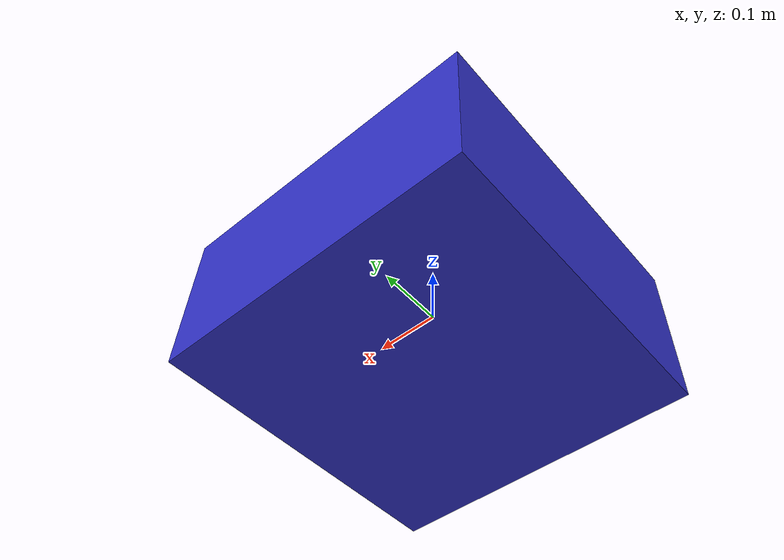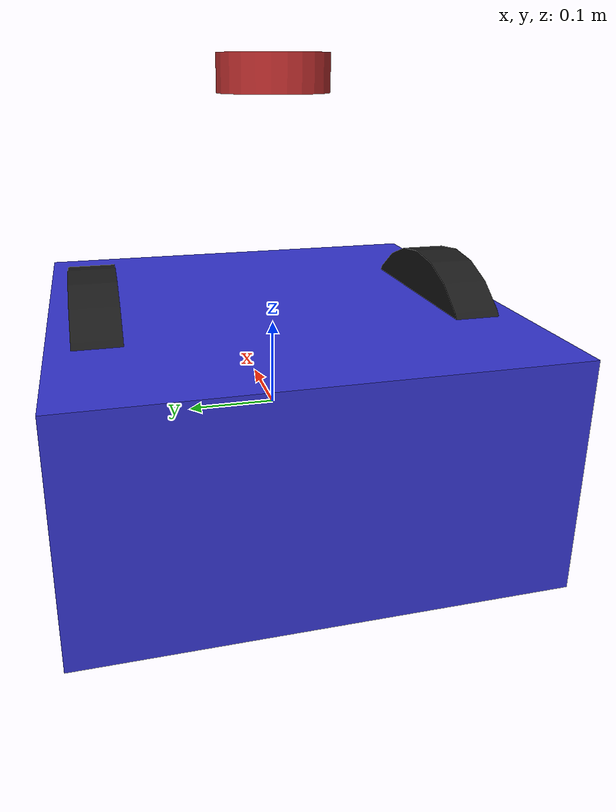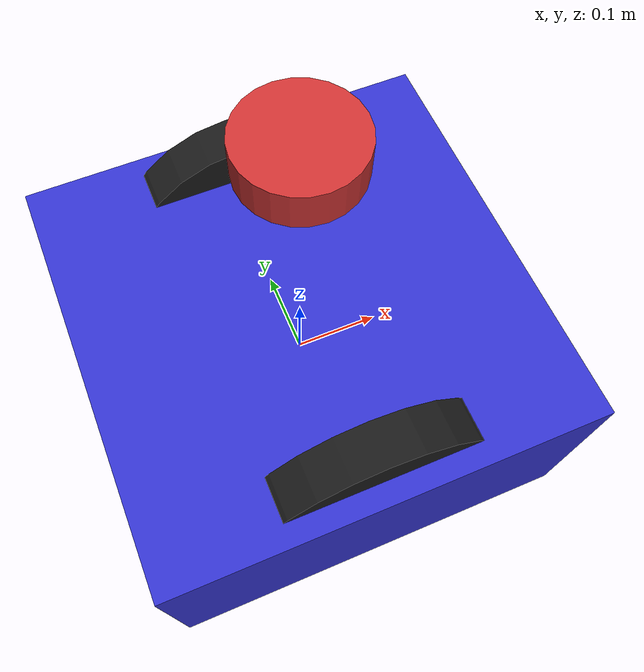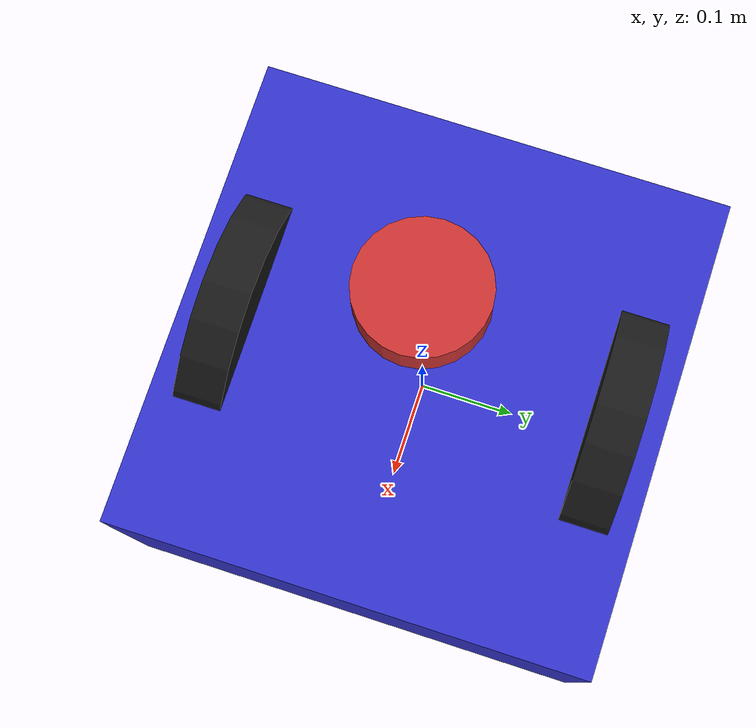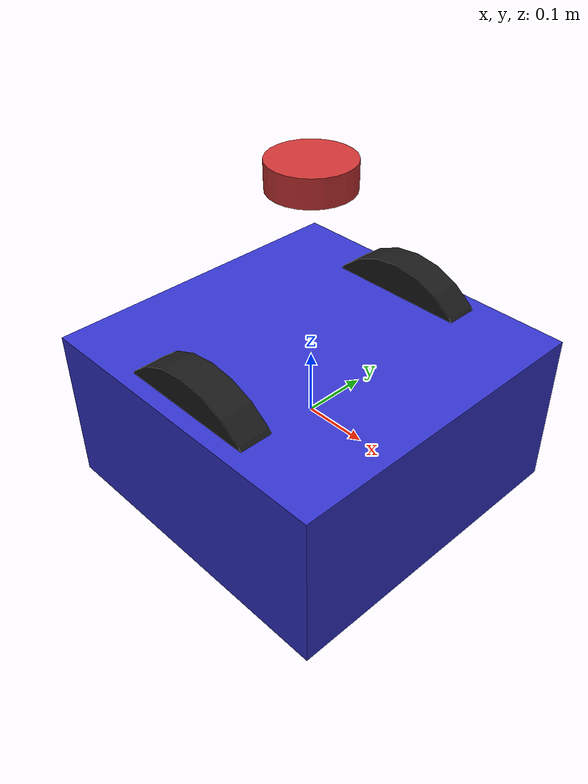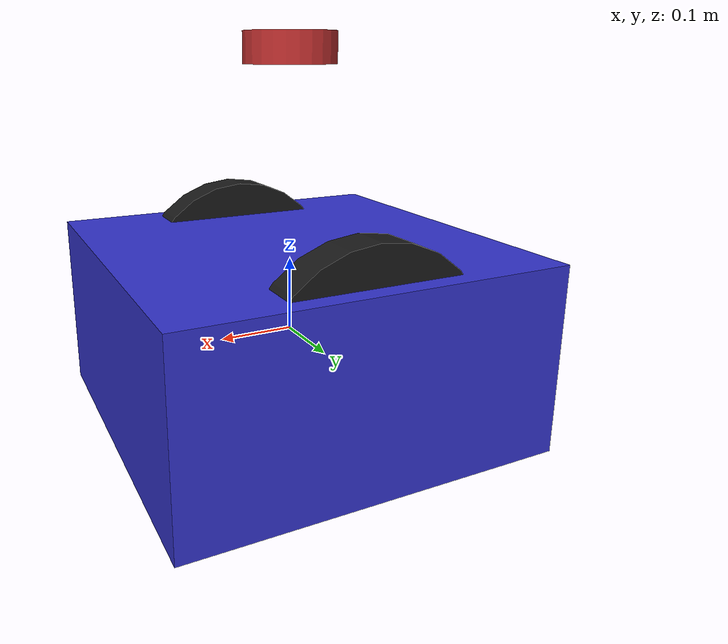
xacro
<?xml version="1.0"?>
<robot name="amr_model" xmlns:xacro="http://www.ros.org/wiki/xacro">

  <!-- Constants -->
  <xacro:property name="chassis_length" value="0.5"/>
  <xacro:property name="chassis_width" value="0.5"/>
  <xacro:property name="chassis_height" value="0.25"/>
  <xacro:property name="chassis_mass" value="20.0"/>
  <xacro:property name="wheel_radius" value="0.15"/>
  <xacro:property name="wheel_width" value="0.05"/>
  <xacro:property name="wheel_mass" value="1.0"/>
  <xacro:property name="wheel_base" value="0.4"/>
  <xacro:property name="lidar_height" value="0.25"/>

  <!-- ==================== Links ==================== -->

  <!-- Base link (chassis) -->
  <link name="base_link">
    <visual>
      <geometry>
        <box size="${chassis_length} ${chassis_width} ${chassis_height}"/>
      </geometry>
      <material name="chassis_color">
        <color rgba="0.2 0.2 0.8 1"/>
      </material>
    </visual>
    <collision name="collision">
      <geometry>
        <box size="${chassis_length} ${chassis_width} ${chassis_height}"/>
      </geometry>
    </collision>
    <inertial>
      <mass value="${chassis_mass}"/>
      <inertia ixx="0.167" ixy="0" ixz="0" iyy="0.167" iyz="0" izz="0.333"/>
    </inertial>
  </link>

  <!-- Left wheel -->
  <link name="wheel_left">
    <visual>
      <geometry>
        <cylinder length="${wheel_width}" radius="${wheel_radius}"/>
      </geometry>
      <material name="wheel_color">
        <color rgba="0.1 0.1 0.1 1"/>
      </material>
    </visual>
    <collision name="collision">
      <geometry>
        <cylinder length="${wheel_width}" radius="${wheel_radius}"/>
      </geometry>
    </collision>
    <inertial>
      <mass value="${wheel_mass}"/>
      <inertia ixx="0.001" ixy="0" ixz="0" iyy="0.001" iyz="0" izz="0.002"/>
    </inertial>
  </link>

  <!-- Right wheel -->
  <link name="wheel_right">
    <visual>
      <geometry>
        <cylinder length="${wheel_width}" radius="${wheel_radius}"/>
      </geometry>
      <material name="wheel_color">
        <color rgba="0.1 0.1 0.1 1"/>
      </material>
    </visual>
    <collision name="collision">
      <geometry>
        <cylinder length="${wheel_width}" radius="${wheel_radius}"/>
      </geometry>
    </collision>
    <inertial>
      <mass value="${wheel_mass}"/>
      <inertia ixx="0.001" ixy="0" ixz="0" iyy="0.001" iyz="0" izz="0.002"/>
    </inertial>
  </link>

  <!-- Caster wheel (rear) -->
  <link name="caster">
    <visual>
      <geometry>
        <sphere radius="0.03"/>
      </geometry>
      <material name="caster_color">
        <color rgba="0.3 0.3 0.3 1"/>
      </material>
    </visual>
    <collision name="collision">
      <geometry>
        <sphere radius="0.03"/>
      </geometry>
    </collision>
    <inertial>
      <mass value="0.1"/>
      <inertia ixx="0.0001" ixy="0" ixz="0" iyy="0.0001" iyz="0" izz="0.0001"/>
    </inertial>
  </link>

  <!-- LiDAR sensor (top-mounted) -->
  <link name="lidar_link">
    <visual>
      <geometry>
        <cylinder length="0.04" radius="0.06"/>
      </geometry>
      <material name="lidar_color">
        <color rgba="0.8 0.2 0.2 1"/>
      </material>
    </visual>
    <collision name="collision">
      <geometry>
        <cylinder length="0.04" radius="0.06"/>
      </geometry>
    </collision>
    <inertial>
      <mass value="0.1"/>
      <inertia ixx="0.0001" ixy="0" ixz="0" iyy="0.0001" iyz="0" izz="0.0001"/>
    </inertial>
  </link>

  <!-- IMU link -->
  <link name="imu_link"/>

  <!-- NOTE: no free-floating odom link — the gz-sim DiffDrive plugin emits the
       odom frame itself; a second root link would break robot_state_publisher
       ("Two root links found"). -->

  <!-- ==================== Joints ==================== -->

  <!-- Left wheel joint (continuous) -->
  <joint name="wheel_left_joint" type="continuous">
    <parent link="base_link"/>
    <child link="wheel_left"/>
    <origin xyz="0 ${wheel_base/2} ${-chassis_height/2 + wheel_radius}" rpy="${-pi/2} 0 0"/>
    <axis xyz="0 0 1"/>
  </joint>

  <!-- Right wheel joint (continuous) -->
  <joint name="wheel_right_joint" type="continuous">
    <parent link="base_link"/>
    <child link="wheel_right"/>
    <origin xyz="0 ${-wheel_base/2} ${-chassis_height/2 + wheel_radius}" rpy="${pi/2} 0 0"/>
    <axis xyz="0 0 1"/>
  </joint>

  <!-- Caster joint (fixed) -->
  <joint name="caster_joint" type="fixed">
    <parent link="base_link"/>
    <child link="caster"/>
    <origin xyz="${-chassis_length/2 + 0.05} 0 ${-chassis_height/2 + 0.03}" rpy="0 0 0"/>
  </joint>

  <!-- LiDAR joint (fixed, top-mounted) -->
  <joint name="lidar_joint" type="fixed">
    <parent link="base_link"/>
    <child link="lidar_link"/>
    <origin xyz="0 0 ${chassis_height/2 + lidar_height}" rpy="0 0 0"/>
  </joint>

  <!-- IMU joint (fixed, chassis-mounted) -->
  <joint name="imu_joint" type="fixed">
    <parent link="base_link"/>
    <child link="imu_link"/>
    <origin xyz="0 0 0" rpy="0 0 0"/>
  </joint>

  <!-- ==================== Gazebo Plugins ==================== -->

  <!-- Differential drive plugin -->
  <gazebo>
    <plugin filename="gz-sim-diff-drive-system" name="gz::sim::systems::DiffDrive">
      <left_joint>wheel_left_joint</left_joint>
      <right_joint>wheel_right_joint</right_joint>
      <wheel_separation>${wheel_base}</wheel_separation>
      <wheel_radius>${wheel_radius}</wheel_radius>
      <odom_frame_id>odom</odom_frame_id>
      <robot_base_frame>base_link</robot_base_frame>
    </plugin>
  </gazebo>

  <gazebo reference="lidar_link">
    <sensor type="gpu_lidar" name="lidar">
      <always_on>true</always_on>
      <update_rate>10</update_rate>
      <lidar>
        <scan>
          <horizontal>
            <samples>360</samples>
            <resolution>1</resolution>
            <min_angle>-3.14159</min_angle>
            <max_angle>3.14159</max_angle>
          </horizontal>
        </scan>
        <range>
          <min>0.1</min>
          <max>10.0</max>
          <resolution>0.01</resolution>
        </range>
      </lidar>
    </sensor>
  </gazebo>

  <gazebo reference="base_link">
    <sensor type="imu" name="imu">
      <always_on>true</always_on>
      <update_rate>100</update_rate>
    </sensor>
  </gazebo>

  <!-- ROS 2 odometry publisher -->
  <gazebo>
    <plugin filename="gz-sim-pose-publisher-system" name="gz::sim::systems::PosePublisher">
      <publish_service_topic>true</publish_service_topic>
      <follow_chassis_frame>true</follow_chassis_frame>
    </plugin>
  </gazebo>

</robot>
